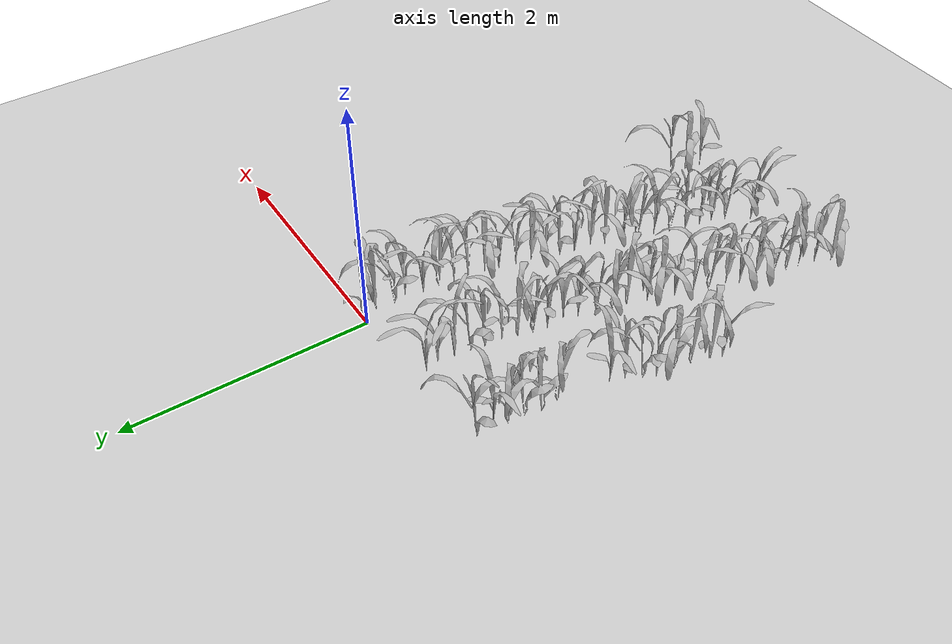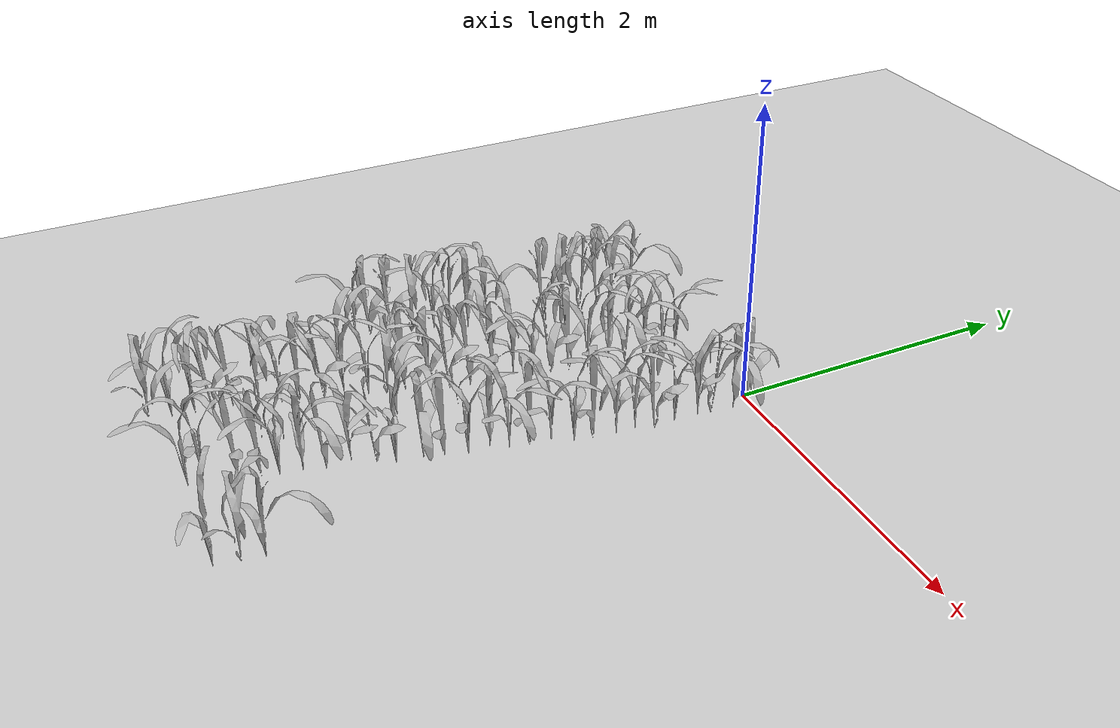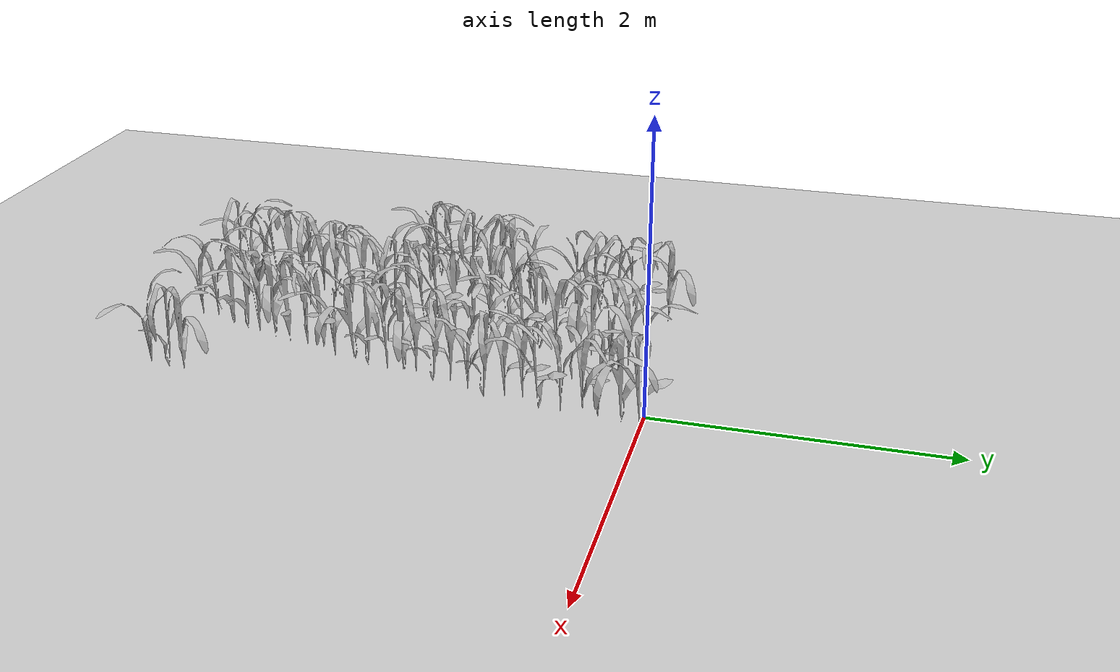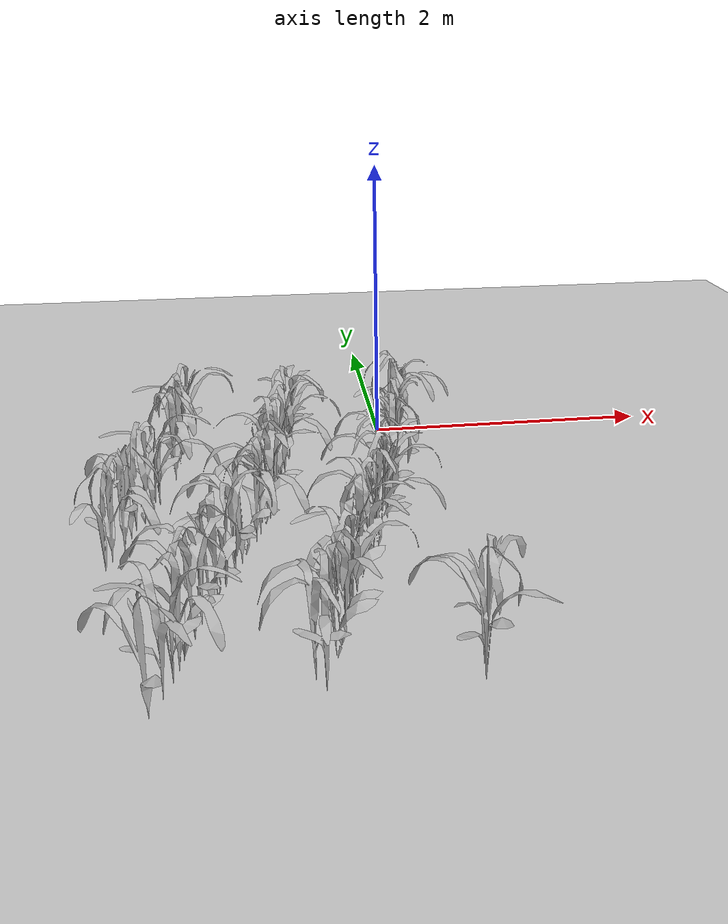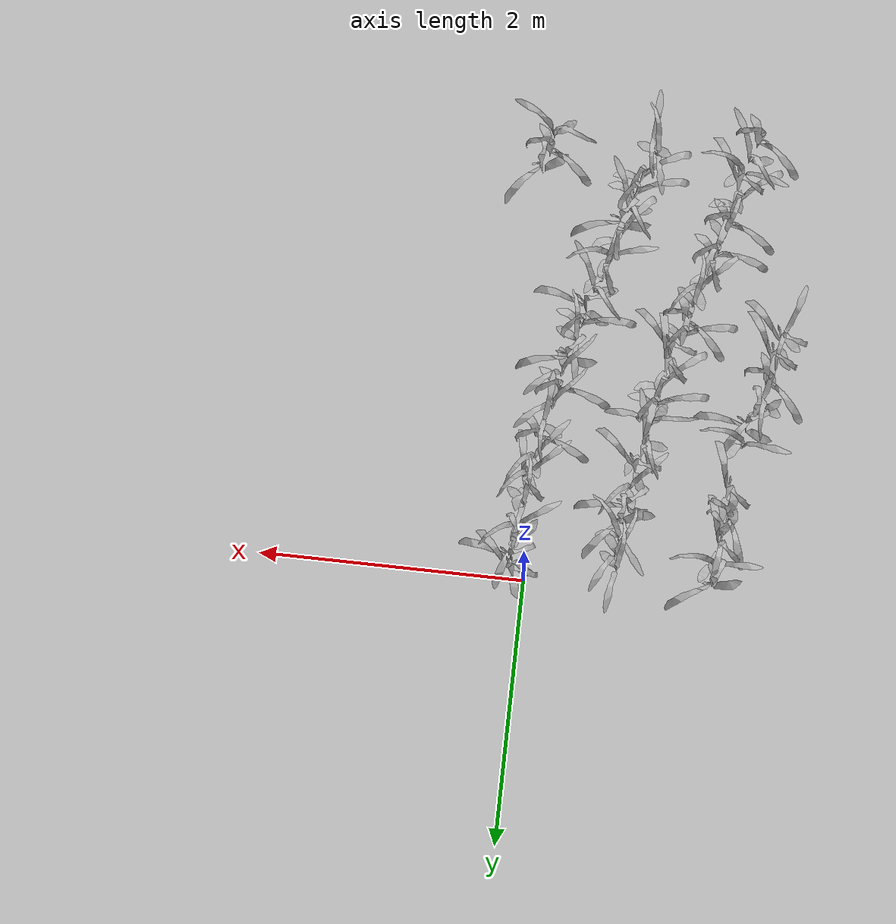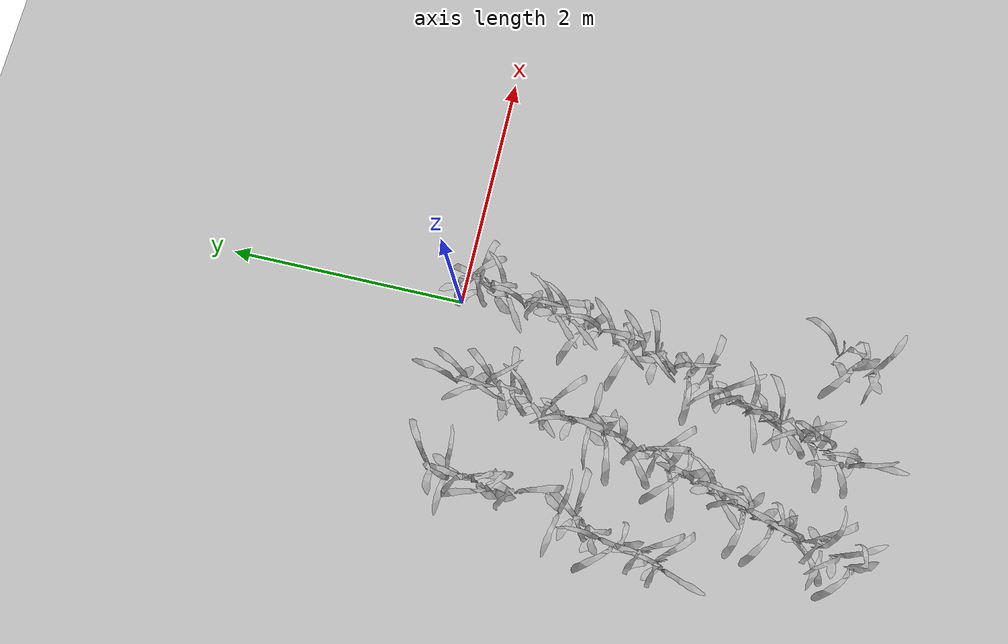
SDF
<sdf version="1.7">
 <world name="default">
  <model name="maize_02_0196">
   <pose>-1.77288 -2.04538 1e-06 -0.000156 3e-06 0.306569</pose>
   <link name="maize_02_link">
    <inertial>
     <pose>0 0 0.01 0 -0 0</pose>
     <mass>0.3</mass>
     <inertia>
      <ixx>0.00334167</ixx>
      <ixy>0</ixy>
      <ixz>0</ixz>
      <iyy>0.00334167</iyy>
      <iyz>0</iyz>
      <izz>1.66667e-05</izz>
     </inertia>
     <pose>0 0 0.1 0 -0 0</pose>
    </inertial>
    <visual name="visual">
     <geometry>
      <mesh><uri>model://maize_02/meshes/maize_02.dae</uri><scale>0.683166 0.683166 0.683166</scale></mesh>
     </geometry>
    </visual>
   </link>
   <static>0</static>
  </model>
  <model name="maize_01_0197">
   <pose>-1.74723 -1.95192 1e-06 2e-06 -0.000116 0.009071</pose>
   <link name="maize_01_link">
    <inertial>
     <pose>0 0 0.01 0 -0 0</pose>
     <mass>0.3</mass>
     <inertia>
      <ixx>0.00334167</ixx>
      <ixy>0</ixy>
      <ixz>0</ixz>
      <iyy>0.00334167</iyy>
      <iyz>0</iyz>
      <izz>1.66667e-05</izz>
     </inertia>
     <pose>0 0 0.1 0 -0 0</pose>
    </inertial>
    <visual name="visual">
     <geometry>
      <mesh><uri>model://maize_01/meshes/maize_01.dae</uri><scale>0.683166 0.683166 0.683166</scale></mesh>
     </geometry>
    </visual>
   </link>
   <static>0</static>
  </model>
  <model name="maize_01_0198">
   <pose>-1.69332 -1.81195 -1e-06 -7.9e-05 6e-06 -0.246721</pose>
   <link name="maize_01_link">
    <inertial>
     <pose>0 0 0.01 0 -0 0</pose>
     <mass>0.3</mass>
     <inertia>
      <ixx>0.00334167</ixx>
      <ixy>0</ixy>
      <ixz>0</ixz>
      <iyy>0.00334167</iyy>
      <iyz>0</iyz>
      <izz>1.66667e-05</izz>
     </inertia>
     <pose>0 0 0.1 0 -0 0</pose>
    </inertial>
    <visual name="visual">
     <geometry>
      <mesh><uri>model://maize_01/meshes/maize_01.dae</uri><scale>0.683166 0.683166 0.683166</scale></mesh>
     </geometry>
    </visual>
   </link>
   <static>0</static>
  </model>
  <model name="maize_01_0199">
   <pose>-1.66122 -1.67341 -0 -5e-06 2.8e-05 3.07493</pose>
   <link name="maize_01_link">
    <inertial>
     <pose>0 0 0.01 0 -0 0</pose>
     <mass>0.3</mass>
     <inertia>
      <ixx>0.00334167</ixx>
      <ixy>0</ixy>
      <ixz>0</ixz>
      <iyy>0.00334167</iyy>
      <iyz>0</iyz>
      <izz>1.66667e-05</izz>
     </inertia>
     <pose>0 0 0.1 0 -0 0</pose>
    </inertial>
    <visual name="visual">
     <geometry>
      <mesh><uri>model://maize_01/meshes/maize_01.dae</uri><scale>0.683166 0.683166 0.683166</scale></mesh>
     </geometry>
    </visual>
   </link>
   <static>0</static>
  </model>
  <model name="maize_02_0200">
   <pose>-1.65213 -1.51637 -0 5e-06 -2.8e-05 0.482195</pose>
   <link name="maize_02_link">
    <inertial>
     <pose>0 0 0.01 0 -0 0</pose>
     <mass>0.3</mass>
     <inertia>
      <ixx>0.00334167</ixx>
      <ixy>0</ixy>
      <ixz>0</ixz>
      <iyy>0.00334167</iyy>
      <iyz>0</iyz>
      <izz>1.66667e-05</izz>
     </inertia>
     <pose>0 0 0.1 0 -0 0</pose>
    </inertial>
    <visual name="visual">
     <geometry>
      <mesh><uri>model://maize_02/meshes/maize_02.dae</uri><scale>0.683166 0.683166 0.683166</scale></mesh>
     </geometry>
    </visual>
   </link>
   <static>0</static>
  </model>
  <model name="maize_01_0201">
   <pose>-1.60629 -1.41965 -0 -2.8e-05 -5e-06 1.76972</pose>
   <link name="maize_01_link">
    <inertial>
     <pose>0 0 0.01 0 -0 0</pose>
     <mass>0.3</mass>
     <inertia>
      <ixx>0.00334167</ixx>
      <ixy>0</ixy>
      <ixz>0</ixz>
      <iyy>0.00334167</iyy>
      <iyz>0</iyz>
      <izz>1.66667e-05</izz>
     </inertia>
     <pose>0 0 0.1 0 -0 0</pose>
    </inertial>
    <visual name="visual">
     <geometry>
      <mesh><uri>model://maize_01/meshes/maize_01.dae</uri><scale>0.683166 0.683166 0.683166</scale></mesh>
     </geometry>
    </visual>
   </link>
   <static>0</static>
  </model>
  <model name="maize_01_0202">
   <pose>-1.55569 -1.3009 1e-06 -0.000156 3e-06 0.728557</pose>
   <link name="maize_01_link">
    <inertial>
     <pose>0 0 0.01 0 -0 0</pose>
     <mass>0.3</mass>
     <inertia>
      <ixx>0.00334167</ixx>
      <ixy>0</ixy>
      <ixz>0</ixz>
      <iyy>0.00334167</iyy>
      <iyz>0</iyz>
      <izz>1.66667e-05</izz>
     </inertia>
     <pose>0 0 0.1 0 -0 0</pose>
    </inertial>
    <visual name="visual">
     <geometry>
      <mesh><uri>model://maize_01/meshes/maize_01.dae</uri><scale>0.683166 0.683166 0.683166</scale></mesh>
     </geometry>
    </visual>
   </link>
   <static>0</static>
  </model>
  <model name="maize_02_0203">
   <pose>-1.53441 -1.16904 -0.000245 -1.2e-05 1.4e-05 -1.12865</pose>
   <link name="maize_02_link">
    <inertial>
     <pose>0 0 0.01 0 -0 0</pose>
     <mass>0.3</mass>
     <inertia>
      <ixx>0.00334167</ixx>
      <ixy>0</ixy>
      <ixz>0</ixz>
      <iyy>0.00334167</iyy>
      <iyz>0</iyz>
      <izz>1.66667e-05</izz>
     </inertia>
     <pose>0 0 0.1 0 -0 0</pose>
    </inertial>
    <visual name="visual">
     <geometry>
      <mesh><uri>model://maize_02/meshes/maize_02.dae</uri><scale>0.683166 0.683166 0.683166</scale></mesh>
     </geometry>
    </visual>
   </link>
   <static>0</static>
  </model>
  <model name="maize_01_0204">
   <pose>-1.4577 -0.768248 -1e-06 -7.9e-05 6e-06 -0.482356</pose>
   <link name="maize_01_link">
    <inertial>
     <pose>0 0 0.01 0 -0 0</pose>
     <mass>0.3</mass>
     <inertia>
      <ixx>0.00334167</ixx>
      <ixy>0</ixy>
      <ixz>0</ixz>
      <iyy>0.00334167</iyy>
      <iyz>0</iyz>
      <izz>1.66667e-05</izz>
     </inertia>
     <pose>0 0 0.1 0 -0 0</pose>
    </inertial>
    <visual name="visual">
     <geometry>
      <mesh><uri>model://maize_01/meshes/maize_01.dae</uri><scale>0.683166 0.683166 0.683166</scale></mesh>
     </geometry>
    </visual>
   </link>
   <static>0</static>
  </model>
  <model name="maize_01_0205">
   <pose>-1.47053 -0.613675 -1e-06 6e-06 -8.6e-05 2.67751</pose>
   <link name="maize_01_link">
    <inertial>
     <pose>0 0 0.01 0 -0 0</pose>
     <mass>0.3</mass>
     <inertia>
      <ixx>0.00334167</ixx>
      <ixy>0</ixy>
      <ixz>0</ixz>
      <iyy>0.00334167</iyy>
      <iyz>0</iyz>
      <izz>1.66667e-05</izz>
     </inertia>
     <pose>0 0 0.1 0 -0 0</pose>
    </inertial>
    <visual name="visual">
     <geometry>
      <mesh><uri>model://maize_01/meshes/maize_01.dae</uri><scale>0.683166 0.683166 0.683166</scale></mesh>
     </geometry>
    </visual>
   </link>
   <static>0</static>
  </model>
  <model name="maize_01_0206">
   <pose>-1.4337 -0.489419 -1e-06 -6e-06 -7.9e-05 2.2981</pose>
   <link name="maize_01_link">
    <inertial>
     <pose>0 0 0.01 0 -0 0</pose>
     <mass>0.3</mass>
     <inertia>
      <ixx>0.00334167</ixx>
      <ixy>0</ixy>
      <ixz>0</ixz>
      <iyy>0.00334167</iyy>
      <iyz>0</iyz>
      <izz>1.66667e-05</izz>
     </inertia>
     <pose>0 0 0.1 0 -0 0</pose>
    </inertial>
    <visual name="visual">
     <geometry>
      <mesh><uri>model://maize_01/meshes/maize_01.dae</uri><scale>0.683166 0.683166 0.683166</scale></mesh>
     </geometry>
    </visual>
   </link>
   <static>0</static>
  </model>
  <model name="maize_01_0207">
   <pose>-1.43557 -0.355632 -0 -2.8e-05 5e-06 -0.509316</pose>
   <link name="maize_01_link">
    <inertial>
     <pose>0 0 0.01 0 -0 0</pose>
     <mass>0.3</mass>
     <inertia>
      <ixx>0.00334167</ixx>
      <ixy>0</ixy>
      <ixz>0</ixz>
      <iyy>0.00334167</iyy>
      <iyz>0</iyz>
      <izz>1.66667e-05</izz>
     </inertia>
     <pose>0 0 0.1 0 -0 0</pose>
    </inertial>
    <visual name="visual">
     <geometry>
      <mesh><uri>model://maize_01/meshes/maize_01.dae</uri><scale>0.683166 0.683166 0.683166</scale></mesh>
     </geometry>
    </visual>
   </link>
   <static>0</static>
  </model>
  <model name="maize_02_0208">
   <pose>-1.40628 -0.243913 -0 5e-06 2.8e-05 -0.983816</pose>
   <link name="maize_02_link">
    <inertial>
     <pose>0 0 0.01 0 -0 0</pose>
     <mass>0.3</mass>
     <inertia>
      <ixx>0.00334167</ixx>
      <ixy>0</ixy>
      <ixz>0</ixz>
      <iyy>0.00334167</iyy>
      <iyz>0</iyz>
      <izz>1.66667e-05</izz>
     </inertia>
     <pose>0 0 0.1 0 -0 0</pose>
    </inertial>
    <visual name="visual">
     <geometry>
      <mesh><uri>model://maize_02/meshes/maize_02.dae</uri><scale>0.683166 0.683166 0.683166</scale></mesh>
     </geometry>
    </visual>
   </link>
   <static>0</static>
  </model>
  <model name="maize_01_0209">
   <pose>-1.41762 -0.101498 -1e-06 -8.3e-05 6e-06 1.36774</pose>
   <link name="maize_01_link">
    <inertial>
     <pose>0 0 0.01 0 -0 0</pose>
     <mass>0.3</mass>
     <inertia>
      <ixx>0.00334167</ixx>
      <ixy>0</ixy>
      <ixz>0</ixz>
      <iyy>0.00334167</iyy>
      <iyz>0</iyz>
      <izz>1.66667e-05</izz>
     </inertia>
     <pose>0 0 0.1 0 -0 0</pose>
    </inertial>
    <visual name="visual">
     <geometry>
      <mesh><uri>model://maize_01/meshes/maize_01.dae</uri><scale>0.683166 0.683166 0.683166</scale></mesh>
     </geometry>
    </visual>
   </link>
   <static>0</static>
  </model>
  <model name="maize_01_0260">
   <pose>-1.42355 -3.49175 -1e-06 8.9e-05 6e-06 -3.10302</pose>
   <link name="maize_01_link">
    <inertial>
     <pose>0 0 0.01 0 -0 0</pose>
     <mass>0.3</mass>
     <inertia>
      <ixx>0.00334167</ixx>
      <ixy>0</ixy>
      <ixz>0</ixz>
      <iyy>0.00334167</iyy>
      <iyz>0</iyz>
      <izz>1.66667e-05</izz>
     </inertia>
     <pose>0 0 0.1 0 -0 0</pose>
    </inertial>
    <visual name="visual">
     <geometry>
      <mesh><uri>model://maize_01/meshes/maize_01.dae</uri><scale>0.683166 0.683166 0.683166</scale></mesh>
     </geometry>
    </visual>
   </link>
   <static>0</static>
  </model>
  <model name="maize_02_0261">
   <pose>-1.37185 -3.35989 -0 -5e-06 -2.8e-05 1.09314</pose>
   <link name="maize_02_link">
    <inertial>
     <pose>0 0 0.01 0 -0 0</pose>
     <mass>0.3</mass>
     <inertia>
      <ixx>0.00334167</ixx>
      <ixy>0</ixy>
      <ixz>0</ixz>
      <iyy>0.00334167</iyy>
      <iyz>0</iyz>
      <izz>1.66667e-05</izz>
     </inertia>
     <pose>0 0 0.1 0 -0 0</pose>
    </inertial>
    <visual name="visual">
     <geometry>
      <mesh><uri>model://maize_02/meshes/maize_02.dae</uri><scale>0.683166 0.683166 0.683166</scale></mesh>
     </geometry>
    </visual>
   </link>
   <static>0</static>
  </model>
  <model name="maize_02_0262">
   <pose>-1.33409 -3.22039 -0.000245 1.4e-05 -1.2e-05 -1.25133</pose>
   <link name="maize_02_link">
    <inertial>
     <pose>0 0 0.01 0 -0 0</pose>
     <mass>0.3</mass>
     <inertia>
      <ixx>0.00334167</ixx>
      <ixy>0</ixy>
      <ixz>0</ixz>
      <iyy>0.00334167</iyy>
      <iyz>0</iyz>
      <izz>1.66667e-05</izz>
     </inertia>
     <pose>0 0 0.1 0 -0 0</pose>
    </inertial>
    <visual name="visual">
     <geometry>
      <mesh><uri>model://maize_02/meshes/maize_02.dae</uri><scale>0.683166 0.683166 0.683166</scale></mesh>
     </geometry>
    </visual>
   </link>
   <static>0</static>
  </model>
  <model name="maize_01_0263">
   <pose>-1.31337 -3.11597 -1e-06 8.6e-05 -6e-06 -0.225166</pose>
   <link name="maize_01_link">
    <inertial>
     <pose>0 0 0.01 0 -0 0</pose>
     <mass>0.3</mass>
     <inertia>
      <ixx>0.00334167</ixx>
      <ixy>0</ixy>
      <ixz>0</ixz>
      <iyy>0.00334167</iyy>
      <iyz>0</iyz>
      <izz>1.66667e-05</izz>
     </inertia>
     <pose>0 0 0.1 0 -0 0</pose>
    </inertial>
    <visual name="visual">
     <geometry>
      <mesh><uri>model://maize_01/meshes/maize_01.dae</uri><scale>0.683166 0.683166 0.683166</scale></mesh>
     </geometry>
    </visual>
   </link>
   <static>0</static>
  </model>
  <model name="maize_01_0264">
   <pose>-1.29684 -2.98966 1e-06 3e-06 -0.00013 -1.70076</pose>
   <link name="maize_01_link">
    <inertial>
     <pose>0 0 0.01 0 -0 0</pose>
     <mass>0.3</mass>
     <inertia>
      <ixx>0.00334167</ixx>
      <ixy>0</ixy>
      <ixz>0</ixz>
      <iyy>0.00334167</iyy>
      <iyz>0</iyz>
      <izz>1.66667e-05</izz>
     </inertia>
     <pose>0 0 0.1 0 -0 0</pose>
    </inertial>
    <visual name="visual">
     <geometry>
      <mesh><uri>model://maize_01/meshes/maize_01.dae</uri><scale>0.683166 0.683166 0.683166</scale></mesh>
     </geometry>
    </visual>
   </link>
   <static>0</static>
  </model>
  <model name="maize_01_0265">
   <pose>-1.24952 -2.8344 -1e-06 -6e-06 -8.9e-05 -2.90078</pose>
   <link name="maize_01_link">
    <inertial>
     <pose>0 0 0.01 0 -0 0</pose>
     <mass>0.3</mass>
     <inertia>
      <ixx>0.00334167</ixx>
      <ixy>0</ixy>
      <ixz>0</ixz>
      <iyy>0.00334167</iyy>
      <iyz>0</iyz>
      <izz>1.66667e-05</izz>
     </inertia>
     <pose>0 0 0.1 0 -0 0</pose>
    </inertial>
    <visual name="visual">
     <geometry>
      <mesh><uri>model://maize_01/meshes/maize_01.dae</uri><scale>0.683166 0.683166 0.683166</scale></mesh>
     </geometry>
    </visual>
   </link>
   <static>0</static>
  </model>
  <model name="maize_02_0266">
   <pose>-1.21906 -2.69869 -1e-06 8.6e-05 -6e-06 -2.9002</pose>
   <link name="maize_02_link">
    <inertial>
     <pose>0 0 0.01 0 -0 0</pose>
     <mass>0.3</mass>
     <inertia>
      <ixx>0.00334167</ixx>
      <ixy>0</ixy>
      <ixz>0</ixz>
      <iyy>0.00334167</iyy>
      <iyz>0</iyz>
      <izz>1.66667e-05</izz>
     </inertia>
     <pose>0 0 0.1 0 -0 0</pose>
    </inertial>
    <visual name="visual">
     <geometry>
      <mesh><uri>model://maize_02/meshes/maize_02.dae</uri><scale>0.683166 0.683166 0.683166</scale></mesh>
     </geometry>
    </visual>
   </link>
   <static>0</static>
  </model>
  <model name="maize_01_0267">
   <pose>-1.17482 -2.58777 -0 5e-06 2.8e-05 -2.60675</pose>
   <link name="maize_01_link">
    <inertial>
     <pose>0 0 0.01 0 -0 0</pose>
     <mass>0.3</mass>
     <inertia>
      <ixx>0.00334167</ixx>
      <ixy>0</ixy>
      <ixz>0</ixz>
      <iyy>0.00334167</iyy>
      <iyz>0</iyz>
      <izz>1.66667e-05</izz>
     </inertia>
     <pose>0 0 0.1 0 -0 0</pose>
    </inertial>
    <visual name="visual">
     <geometry>
      <mesh><uri>model://maize_01/meshes/maize_01.dae</uri><scale>0.683166 0.683166 0.683166</scale></mesh>
     </geometry>
    </visual>
   </link>
   <static>0</static>
  </model>
  <model name="maize_01_0268">
   <pose>-1.14631 -2.44412 -0 5e-06 2.8e-05 -1.03449</pose>
   <link name="maize_01_link">
    <inertial>
     <pose>0 0 0.01 0 -0 0</pose>
     <mass>0.3</mass>
     <inertia>
      <ixx>0.00334167</ixx>
      <ixy>0</ixy>
      <ixz>0</ixz>
      <iyy>0.00334167</iyy>
      <iyz>0</iyz>
      <izz>1.66667e-05</izz>
     </inertia>
     <pose>0 0 0.1 0 -0 0</pose>
    </inertial>
    <visual name="visual">
     <geometry>
      <mesh><uri>model://maize_01/meshes/maize_01.dae</uri><scale>0.683166 0.683166 0.683166</scale></mesh>
     </geometry>
    </visual>
   </link>
   <static>0</static>
  </model>
  <model name="maize_02_0269">
   <pose>-1.10263 -2.31988 -0.000245 -1.4e-05 1.2e-05 -0.212283</pose>
   <link name="maize_02_link">
    <inertial>
     <pose>0 0 0.01 0 -0 0</pose>
     <mass>0.3</mass>
     <inertia>
      <ixx>0.00334167</ixx>
      <ixy>0</ixy>
      <ixz>0</ixz>
      <iyy>0.00334167</iyy>
      <iyz>0</iyz>
      <izz>1.66667e-05</izz>
     </inertia>
     <pose>0 0 0.1 0 -0 0</pose>
    </inertial>
    <visual name="visual">
     <geometry>
      <mesh><uri>model://maize_02/meshes/maize_02.dae</uri><scale>0.683166 0.683166 0.683166</scale></mesh>
     </geometry>
    </visual>
   </link>
   <static>0</static>
  </model>
  <model name="maize_02_0270">
   <pose>-1.05323 -2.17308 -1e-06 6e-06 7.9e-05 -2.71286</pose>
   <link name="maize_02_link">
    <inertial>
     <pose>0 0 0.01 0 -0 0</pose>
     <mass>0.3</mass>
     <inertia>
      <ixx>0.00334167</ixx>
      <ixy>0</ixy>
      <ixz>0</ixz>
      <iyy>0.00334167</iyy>
      <iyz>0</iyz>
      <izz>1.66667e-05</izz>
     </inertia>
     <pose>0 0 0.1 0 -0 0</pose>
    </inertial>
    <visual name="visual">
     <geometry>
      <mesh><uri>model://maize_02/meshes/maize_02.dae</uri><scale>0.683166 0.683166 0.683166</scale></mesh>
     </geometry>
    </visual>
   </link>
   <static>0</static>
  </model>
  <model name="maize_01_0271">
   <pose>-1.01258 -2.06003 -0 5e-06 -2.8e-05 -3.13397</pose>
   <link name="maize_01_link">
    <inertial>
     <pose>0 0 0.01 0 -0 0</pose>
     <mass>0.3</mass>
     <inertia>
      <ixx>0.00334167</ixx>
      <ixy>0</ixy>
      <ixz>0</ixz>
      <iyy>0.00334167</iyy>
      <iyz>0</iyz>
      <izz>1.66667e-05</izz>
     </inertia>
     <pose>0 0 0.1 0 -0 0</pose>
    </inertial>
    <visual name="visual">
     <geometry>
      <mesh><uri>model://maize_01/meshes/maize_01.dae</uri><scale>0.683166 0.683166 0.683166</scale></mesh>
     </geometry>
    </visual>
   </link>
   <static>0</static>
  </model>
  <model name="maize_01_0272">
   <pose>-0.994138 -1.94309 1e-06 -0.000156 3e-06 -2.17775</pose>
   <link name="maize_01_link">
    <inertial>
     <pose>0 0 0.01 0 -0 0</pose>
     <mass>0.3</mass>
     <inertia>
      <ixx>0.00334167</ixx>
      <ixy>0</ixy>
      <ixz>0</ixz>
      <iyy>0.00334167</iyy>
      <iyz>0</iyz>
      <izz>1.66667e-05</izz>
     </inertia>
     <pose>0 0 0.1 0 -0 0</pose>
    </inertial>
    <visual name="visual">
     <geometry>
      <mesh><uri>model://maize_01/meshes/maize_01.dae</uri><scale>0.683166 0.683166 0.683166</scale></mesh>
     </geometry>
    </visual>
   </link>
   <static>0</static>
  </model>
  <model name="maize_01_0273">
   <pose>-0.930453 -1.79781 -0 5e-06 -2.8e-05 -0.006102</pose>
   <link name="maize_01_link">
    <inertial>
     <pose>0 0 0.01 0 -0 0</pose>
     <mass>0.3</mass>
     <inertia>
      <ixx>0.00334167</ixx>
      <ixy>0</ixy>
      <ixz>0</ixz>
      <iyy>0.00334167</iyy>
      <iyz>0</iyz>
      <izz>1.66667e-05</izz>
     </inertia>
     <pose>0 0 0.1 0 -0 0</pose>
    </inertial>
    <visual name="visual">
     <geometry>
      <mesh><uri>model://maize_01/meshes/maize_01.dae</uri><scale>0.683166 0.683166 0.683166</scale></mesh>
     </geometry>
    </visual>
   </link>
   <static>0</static>
  </model>
  <model name="maize_01_0274">
   <pose>-0.905879 -1.67646 -0.000245 -1.2e-05 1.4e-05 -0.593243</pose>
   <link name="maize_01_link">
    <inertial>
     <pose>0 0 0.01 0 -0 0</pose>
     <mass>0.3</mass>
     <inertia>
      <ixx>0.00334167</ixx>
      <ixy>0</ixy>
      <ixz>0</ixz>
      <iyy>0.00334167</iyy>
      <iyz>0</iyz>
      <izz>1.66667e-05</izz>
     </inertia>
     <pose>0 0 0.1 0 -0 0</pose>
    </inertial>
    <visual name="visual">
     <geometry>
      <mesh><uri>model://maize_01/meshes/maize_01.dae</uri><scale>0.683166 0.683166 0.683166</scale></mesh>
     </geometry>
    </visual>
   </link>
   <static>0</static>
  </model>
  <model name="maize_01_0275">
   <pose>-0.872901 -1.54295 -0 -5e-06 2.8e-05 -1.66984</pose>
   <link name="maize_01_link">
    <inertial>
     <pose>0 0 0.01 0 -0 0</pose>
     <mass>0.3</mass>
     <inertia>
      <ixx>0.00334167</ixx>
      <ixy>0</ixy>
      <ixz>0</ixz>
      <iyy>0.00334167</iyy>
      <iyz>0</iyz>
      <izz>1.66667e-05</izz>
     </inertia>
     <pose>0 0 0.1 0 -0 0</pose>
    </inertial>
    <visual name="visual">
     <geometry>
      <mesh><uri>model://maize_01/meshes/maize_01.dae</uri><scale>0.683166 0.683166 0.683166</scale></mesh>
     </geometry>
    </visual>
   </link>
   <static>0</static>
  </model>
  <model name="maize_01_0276">
   <pose>-0.833614 -1.39389 -1e-06 -8.6e-05 6e-06 -2.1599</pose>
   <link name="maize_01_link">
    <inertial>
     <pose>0 0 0.01 0 -0 0</pose>
     <mass>0.3</mass>
     <inertia>
      <ixx>0.00334167</ixx>
      <ixy>0</ixy>
      <ixz>0</ixz>
      <iyy>0.00334167</iyy>
      <iyz>0</iyz>
      <izz>1.66667e-05</izz>
     </inertia>
     <pose>0 0 0.1 0 -0 0</pose>
    </inertial>
    <visual name="visual">
     <geometry>
      <mesh><uri>model://maize_01/meshes/maize_01.dae</uri><scale>0.683166 0.683166 0.683166</scale></mesh>
     </geometry>
    </visual>
   </link>
   <static>0</static>
  </model>
  <model name="maize_02_0277">
   <pose>-0.82517 -1.26151 -0 -5e-06 2.8e-05 2.1402</pose>
   <link name="maize_02_link">
    <inertial>
     <pose>0 0 0.01 0 -0 0</pose>
     <mass>0.3</mass>
     <inertia>
      <ixx>0.00334167</ixx>
      <ixy>0</ixy>
      <ixz>0</ixz>
      <iyy>0.00334167</iyy>
      <iyz>0</iyz>
      <izz>1.66667e-05</izz>
     </inertia>
     <pose>0 0 0.1 0 -0 0</pose>
    </inertial>
    <visual name="visual">
     <geometry>
      <mesh><uri>model://maize_02/meshes/maize_02.dae</uri><scale>0.683166 0.683166 0.683166</scale></mesh>
     </geometry>
    </visual>
   </link>
   <static>0</static>
  </model>
  <model name="maize_02_0278">
   <pose>-0.802042 -1.1304 -0 5e-06 -2.8e-05 0.845214</pose>
   <link name="maize_02_link">
    <inertial>
     <pose>0 0 0.01 0 -0 0</pose>
     <mass>0.3</mass>
     <inertia>
      <ixx>0.00334167</ixx>
      <ixy>0</ixy>
      <ixz>0</ixz>
      <iyy>0.00334167</iyy>
      <iyz>0</iyz>
      <izz>1.66667e-05</izz>
     </inertia>
     <pose>0 0 0.1 0 -0 0</pose>
    </inertial>
    <visual name="visual">
     <geometry>
      <mesh><uri>model://maize_02/meshes/maize_02.dae</uri><scale>0.683166 0.683166 0.683166</scale></mesh>
     </geometry>
    </visual>
   </link>
   <static>0</static>
  </model>
  <model name="maize_01_0279">
   <pose>-0.783416 -1.01189 1e-06 0.000156 3e-06 -0.901197</pose>
   <link name="maize_01_link">
    <inertial>
     <pose>0 0 0.01 0 -0 0</pose>
     <mass>0.3</mass>
     <inertia>
      <ixx>0.00334167</ixx>
      <ixy>0</ixy>
      <ixz>0</ixz>
      <iyy>0.00334167</iyy>
      <iyz>0</iyz>
      <izz>1.66667e-05</izz>
     </inertia>
     <pose>0 0 0.1 0 -0 0</pose>
    </inertial>
    <visual name="visual">
     <geometry>
      <mesh><uri>model://maize_01/meshes/maize_01.dae</uri><scale>0.683166 0.683166 0.683166</scale></mesh>
     </geometry>
    </visual>
   </link>
   <static>0</static>
  </model>
  <model name="maize_01_0280">
   <pose>-0.755146 -0.892494 -0 -2.8e-05 5e-06 0.086274</pose>
   <link name="maize_01_link">
    <inertial>
     <pose>0 0 0.01 0 -0 0</pose>
     <mass>0.3</mass>
     <inertia>
      <ixx>0.00334167</ixx>
      <ixy>0</ixy>
      <ixz>0</ixz>
      <iyy>0.00334167</iyy>
      <iyz>0</iyz>
      <izz>1.66667e-05</izz>
     </inertia>
     <pose>0 0 0.1 0 -0 0</pose>
    </inertial>
    <visual name="visual">
     <geometry>
      <mesh><uri>model://maize_01/meshes/maize_01.dae</uri><scale>0.683166 0.683166 0.683166</scale></mesh>
     </geometry>
    </visual>
   </link>
   <static>0</static>
  </model>
  <model name="maize_02_0281">
   <pose>-0.727001 -0.762756 -0 2.8e-05 5e-06 -0.168254</pose>
   <link name="maize_02_link">
    <inertial>
     <pose>0 0 0.01 0 -0 0</pose>
     <mass>0.3</mass>
     <inertia>
      <ixx>0.00334167</ixx>
      <ixy>0</ixy>
      <ixz>0</ixz>
      <iyy>0.00334167</iyy>
      <iyz>0</iyz>
      <izz>1.66667e-05</izz>
     </inertia>
     <pose>0 0 0.1 0 -0 0</pose>
    </inertial>
    <visual name="visual">
     <geometry>
      <mesh><uri>model://maize_02/meshes/maize_02.dae</uri><scale>0.683166 0.683166 0.683166</scale></mesh>
     </geometry>
    </visual>
   </link>
   <static>0</static>
  </model>
  <model name="maize_01_0282">
   <pose>-0.733512 -0.609577 -0 -5e-06 2.8e-05 0.913001</pose>
   <link name="maize_01_link">
    <inertial>
     <pose>0 0 0.01 0 -0 0</pose>
     <mass>0.3</mass>
     <inertia>
      <ixx>0.00334167</ixx>
      <ixy>0</ixy>
      <ixz>0</ixz>
      <iyy>0.00334167</iyy>
      <iyz>0</iyz>
      <izz>1.66667e-05</izz>
     </inertia>
     <pose>0 0 0.1 0 -0 0</pose>
    </inertial>
    <visual name="visual">
     <geometry>
      <mesh><uri>model://maize_01/meshes/maize_01.dae</uri><scale>0.683166 0.683166 0.683166</scale></mesh>
     </geometry>
    </visual>
   </link>
   <static>0</static>
  </model>
  <model name="maize_01_0283">
   <pose>-0.684173 -0.507618 -0.000245 -1.2e-05 1.4e-05 1.66532</pose>
   <link name="maize_01_link">
    <inertial>
     <pose>0 0 0.01 0 -0 0</pose>
     <mass>0.3</mass>
     <inertia>
      <ixx>0.00334167</ixx>
      <ixy>0</ixy>
      <ixz>0</ixz>
      <iyy>0.00334167</iyy>
      <iyz>0</iyz>
      <izz>1.66667e-05</izz>
     </inertia>
     <pose>0 0 0.1 0 -0 0</pose>
    </inertial>
    <visual name="visual">
     <geometry>
      <mesh><uri>model://maize_01/meshes/maize_01.dae</uri><scale>0.683166 0.683166 0.683166</scale></mesh>
     </geometry>
    </visual>
   </link>
   <static>0</static>
  </model>
  <model name="maize_02_0284">
   <pose>-0.677657 -0.370369 -0 -2.8e-05 5e-06 -1.91496</pose>
   <link name="maize_02_link">
    <inertial>
     <pose>0 0 0.01 0 -0 0</pose>
     <mass>0.3</mass>
     <inertia>
      <ixx>0.00334167</ixx>
      <ixy>0</ixy>
      <ixz>0</ixz>
      <iyy>0.00334167</iyy>
      <iyz>0</iyz>
      <izz>1.66667e-05</izz>
     </inertia>
     <pose>0 0 0.1 0 -0 0</pose>
    </inertial>
    <visual name="visual">
     <geometry>
      <mesh><uri>model://maize_02/meshes/maize_02.dae</uri><scale>0.683166 0.683166 0.683166</scale></mesh>
     </geometry>
    </visual>
   </link>
   <static>0</static>
  </model>
  <model name="maize_02_0285">
   <pose>-0.658655 -0.237879 -0 2.8e-05 -5e-06 -3.01122</pose>
   <link name="maize_02_link">
    <inertial>
     <pose>0 0 0.01 0 -0 0</pose>
     <mass>0.3</mass>
     <inertia>
      <ixx>0.00334167</ixx>
      <ixy>0</ixy>
      <ixz>0</ixz>
      <iyy>0.00334167</iyy>
      <iyz>0</iyz>
      <izz>1.66667e-05</izz>
     </inertia>
     <pose>0 0 0.1 0 -0 0</pose>
    </inertial>
    <visual name="visual">
     <geometry>
      <mesh><uri>model://maize_02/meshes/maize_02.dae</uri><scale>0.683166 0.683166 0.683166</scale></mesh>
     </geometry>
    </visual>
   </link>
   <static>0</static>
  </model>
  <model name="maize_02_0286">
   <pose>-0.679031 -0.127317 -0 -2.8e-05 -5e-06 -2.67942</pose>
   <link name="maize_02_link">
    <inertial>
     <pose>0 0 0.01 0 -0 0</pose>
     <mass>0.3</mass>
     <inertia>
      <ixx>0.00334167</ixx>
      <ixy>0</ixy>
      <ixz>0</ixz>
      <iyy>0.00334167</iyy>
      <iyz>0</iyz>
      <izz>1.66667e-05</izz>
     </inertia>
     <pose>0 0 0.1 0 -0 0</pose>
    </inertial>
    <visual name="visual">
     <geometry>
      <mesh><uri>model://maize_02/meshes/maize_02.dae</uri><scale>0.683166 0.683166 0.683166</scale></mesh>
     </geometry>
    </visual>
   </link>
   <static>0</static>
  </model>
  <model name="maize_02_0335">
   <pose>-0.628911 -3.39896 -0 5e-06 -2.8e-05 0.578584</pose>
   <link name="maize_02_link">
    <inertial>
     <pose>0 0 0.01 0 -0 0</pose>
     <mass>0.3</mass>
     <inertia>
      <ixx>0.00334167</ixx>
      <ixy>0</ixy>
      <ixz>0</ixz>
      <iyy>0.00334167</iyy>
      <iyz>0</iyz>
      <izz>1.66667e-05</izz>
     </inertia>
     <pose>0 0 0.1 0 -0 0</pose>
    </inertial>
    <visual name="visual">
     <geometry>
      <mesh><uri>model://maize_02/meshes/maize_02.dae</uri><scale>0.683166 0.683166 0.683166</scale></mesh>
     </geometry>
    </visual>
   </link>
   <static>0</static>
  </model>
  <model name="maize_02_0336">
   <pose>-0.671571 -3.30107 -0 2.8e-05 5e-06 -2.34635</pose>
   <link name="maize_02_link">
    <inertial>
     <pose>0 0 0.01 0 -0 0</pose>
     <mass>0.3</mass>
     <inertia>
      <ixx>0.00334167</ixx>
      <ixy>0</ixy>
      <ixz>0</ixz>
      <iyy>0.00334167</iyy>
      <iyz>0</iyz>
      <izz>1.66667e-05</izz>
     </inertia>
     <pose>0 0 0.1 0 -0 0</pose>
    </inertial>
    <visual name="visual">
     <geometry>
      <mesh><uri>model://maize_02/meshes/maize_02.dae</uri><scale>0.683166 0.683166 0.683166</scale></mesh>
     </geometry>
    </visual>
   </link>
   <static>0</static>
  </model>
  <model name="maize_01_0337">
   <pose>-0.559282 -3.11511 -1e-06 6e-06 -8.6e-05 -1.85949</pose>
   <link name="maize_01_link">
    <inertial>
     <pose>0 0 0.01 0 -0 0</pose>
     <mass>0.3</mass>
     <inertia>
      <ixx>0.00334167</ixx>
      <ixy>0</ixy>
      <ixz>0</ixz>
      <iyy>0.00334167</iyy>
      <iyz>0</iyz>
      <izz>1.66667e-05</izz>
     </inertia>
     <pose>0 0 0.1 0 -0 0</pose>
    </inertial>
    <visual name="visual">
     <geometry>
      <mesh><uri>model://maize_01/meshes/maize_01.dae</uri><scale>0.683166 0.683166 0.683166</scale></mesh>
     </geometry>
    </visual>
   </link>
   <static>0</static>
  </model>
  <model name="maize_01_0338">
   <pose>-0.525188 -2.98905 -0 5e-06 2.8e-05 -2.11541</pose>
   <link name="maize_01_link">
    <inertial>
     <pose>0 0 0.01 0 -0 0</pose>
     <mass>0.3</mass>
     <inertia>
      <ixx>0.00334167</ixx>
      <ixy>0</ixy>
      <ixz>0</ixz>
      <iyy>0.00334167</iyy>
      <iyz>0</iyz>
      <izz>1.66667e-05</izz>
     </inertia>
     <pose>0 0 0.1 0 -0 0</pose>
    </inertial>
    <visual name="visual">
     <geometry>
      <mesh><uri>model://maize_01/meshes/maize_01.dae</uri><scale>0.683166 0.683166 0.683166</scale></mesh>
     </geometry>
    </visual>
   </link>
   <static>0</static>
  </model>
  <model name="maize_02_0339">
   <pose>-0.497466 -2.88997 1e-06 0.000156 -3e-06 1.05558</pose>
   <link name="maize_02_link">
    <inertial>
     <pose>0 0 0.01 0 -0 0</pose>
     <mass>0.3</mass>
     <inertia>
      <ixx>0.00334167</ixx>
      <ixy>0</ixy>
      <ixz>0</ixz>
      <iyy>0.00334167</iyy>
      <iyz>0</iyz>
      <izz>1.66667e-05</izz>
     </inertia>
     <pose>0 0 0.1 0 -0 0</pose>
    </inertial>
    <visual name="visual">
     <geometry>
      <mesh><uri>model://maize_02/meshes/maize_02.dae</uri><scale>0.683166 0.683166 0.683166</scale></mesh>
     </geometry>
    </visual>
   </link>
   <static>0</static>
  </model>
  <model name="maize_01_0340">
   <pose>-0.468156 -2.75861 -1e-06 -6e-06 8.9e-05 1.16128</pose>
   <link name="maize_01_link">
    <inertial>
     <pose>0 0 0.01 0 -0 0</pose>
     <mass>0.3</mass>
     <inertia>
      <ixx>0.00334167</ixx>
      <ixy>0</ixy>
      <ixz>0</ixz>
      <iyy>0.00334167</iyy>
      <iyz>0</iyz>
      <izz>1.66667e-05</izz>
     </inertia>
     <pose>0 0 0.1 0 -0 0</pose>
    </inertial>
    <visual name="visual">
     <geometry>
      <mesh><uri>model://maize_01/meshes/maize_01.dae</uri><scale>0.683166 0.683166 0.683166</scale></mesh>
     </geometry>
    </visual>
   </link>
   <static>0</static>
  </model>
  <model name="maize_01_0341">
   <pose>-0.43272 -2.62617 -0 2.8e-05 -5e-06 -1.45459</pose>
   <link name="maize_01_link">
    <inertial>
     <pose>0 0 0.01 0 -0 0</pose>
     <mass>0.3</mass>
     <inertia>
      <ixx>0.00334167</ixx>
      <ixy>0</ixy>
      <ixz>0</ixz>
      <iyy>0.00334167</iyy>
      <iyz>0</iyz>
      <izz>1.66667e-05</izz>
     </inertia>
     <pose>0 0 0.1 0 -0 0</pose>
    </inertial>
    <visual name="visual">
     <geometry>
      <mesh><uri>model://maize_01/meshes/maize_01.dae</uri><scale>0.683166 0.683166 0.683166</scale></mesh>
     </geometry>
    </visual>
   </link>
   <static>0</static>
  </model>
  <model name="maize_02_0342">
   <pose>-0.399285 -2.47903 1e-06 -3e-06 0.000156 -0.76464</pose>
   <link name="maize_02_link">
    <inertial>
     <pose>0 0 0.01 0 -0 0</pose>
     <mass>0.3</mass>
     <inertia>
      <ixx>0.00334167</ixx>
      <ixy>0</ixy>
      <ixz>0</ixz>
      <iyy>0.00334167</iyy>
      <iyz>0</iyz>
      <izz>1.66667e-05</izz>
     </inertia>
     <pose>0 0 0.1 0 -0 0</pose>
    </inertial>
    <visual name="visual">
     <geometry>
      <mesh><uri>model://maize_02/meshes/maize_02.dae</uri><scale>0.683166 0.683166 0.683166</scale></mesh>
     </geometry>
    </visual>
   </link>
   <static>0</static>
  </model>
  <model name="maize_01_0343">
   <pose>-0.359969 -2.33942 -0 2.8e-05 5e-06 -1.04649</pose>
   <link name="maize_01_link">
    <inertial>
     <pose>0 0 0.01 0 -0 0</pose>
     <mass>0.3</mass>
     <inertia>
      <ixx>0.00334167</ixx>
      <ixy>0</ixy>
      <ixz>0</ixz>
      <iyy>0.00334167</iyy>
      <iyz>0</iyz>
      <izz>1.66667e-05</izz>
     </inertia>
     <pose>0 0 0.1 0 -0 0</pose>
    </inertial>
    <visual name="visual">
     <geometry>
      <mesh><uri>model://maize_01/meshes/maize_01.dae</uri><scale>0.683166 0.683166 0.683166</scale></mesh>
     </geometry>
    </visual>
   </link>
   <static>0</static>
  </model>
  <model name="maize_02_0344">
   <pose>-0.30534 -2.2353 -1e-06 -6e-06 -7.9e-05 1.16185</pose>
   <link name="maize_02_link">
    <inertial>
     <pose>0 0 0.01 0 -0 0</pose>
     <mass>0.3</mass>
     <inertia>
      <ixx>0.00334167</ixx>
      <ixy>0</ixy>
      <ixz>0</ixz>
      <iyy>0.00334167</iyy>
      <iyz>0</iyz>
      <izz>1.66667e-05</izz>
     </inertia>
     <pose>0 0 0.1 0 -0 0</pose>
    </inertial>
    <visual name="visual">
     <geometry>
      <mesh><uri>model://maize_02/meshes/maize_02.dae</uri><scale>0.683166 0.683166 0.683166</scale></mesh>
     </geometry>
    </visual>
   </link>
   <static>0</static>
  </model>
  <model name="maize_01_0345">
   <pose>-0.266287 -2.0772 -0 5e-06 -2.8e-05 0.594766</pose>
   <link name="maize_01_link">
    <inertial>
     <pose>0 0 0.01 0 -0 0</pose>
     <mass>0.3</mass>
     <inertia>
      <ixx>0.00334167</ixx>
      <ixy>0</ixy>
      <ixz>0</ixz>
      <iyy>0.00334167</iyy>
      <iyz>0</iyz>
      <izz>1.66667e-05</izz>
     </inertia>
     <pose>0 0 0.1 0 -0 0</pose>
    </inertial>
    <visual name="visual">
     <geometry>
      <mesh><uri>model://maize_01/meshes/maize_01.dae</uri><scale>0.683166 0.683166 0.683166</scale></mesh>
     </geometry>
    </visual>
   </link>
   <static>0</static>
  </model>
  <model name="maize_01_0346">
   <pose>-0.224964 -1.95359 -0 2.8e-05 -5e-06 -2.32601</pose>
   <link name="maize_01_link">
    <inertial>
     <pose>0 0 0.01 0 -0 0</pose>
     <mass>0.3</mass>
     <inertia>
      <ixx>0.00334167</ixx>
      <ixy>0</ixy>
      <ixz>0</ixz>
      <iyy>0.00334167</iyy>
      <iyz>0</iyz>
      <izz>1.66667e-05</izz>
     </inertia>
     <pose>0 0 0.1 0 -0 0</pose>
    </inertial>
    <visual name="visual">
     <geometry>
      <mesh><uri>model://maize_01/meshes/maize_01.dae</uri><scale>0.683166 0.683166 0.683166</scale></mesh>
     </geometry>
    </visual>
   </link>
   <static>0</static>
  </model>
  <model name="maize_02_0347">
   <pose>-0.203386 -1.8123 -0 -2.8e-05 -5e-06 -2.44266</pose>
   <link name="maize_02_link">
    <inertial>
     <pose>0 0 0.01 0 -0 0</pose>
     <mass>0.3</mass>
     <inertia>
      <ixx>0.00334167</ixx>
      <ixy>0</ixy>
      <ixz>0</ixz>
      <iyy>0.00334167</iyy>
      <iyz>0</iyz>
      <izz>1.66667e-05</izz>
     </inertia>
     <pose>0 0 0.1 0 -0 0</pose>
    </inertial>
    <visual name="visual">
     <geometry>
      <mesh><uri>model://maize_02/meshes/maize_02.dae</uri><scale>0.683166 0.683166 0.683166</scale></mesh>
     </geometry>
    </visual>
   </link>
   <static>0</static>
  </model>
  <model name="maize_01_0348">
   <pose>-0.173435 -1.68593 1e-06 -3e-06 -0.000156 1.09234</pose>
   <link name="maize_01_link">
    <inertial>
     <pose>0 0 0.01 0 -0 0</pose>
     <mass>0.3</mass>
     <inertia>
      <ixx>0.00334167</ixx>
      <ixy>0</ixy>
      <ixz>0</ixz>
      <iyy>0.00334167</iyy>
      <iyz>0</iyz>
      <izz>1.66667e-05</izz>
     </inertia>
     <pose>0 0 0.1 0 -0 0</pose>
    </inertial>
    <visual name="visual">
     <geometry>
      <mesh><uri>model://maize_01/meshes/maize_01.dae</uri><scale>0.683166 0.683166 0.683166</scale></mesh>
     </geometry>
    </visual>
   </link>
   <static>0</static>
  </model>
  <model name="maize_02_0349">
   <pose>-0.121573 -1.57713 -0 5e-06 -2.8e-05 2.92207</pose>
   <link name="maize_02_link">
    <inertial>
     <pose>0 0 0.01 0 -0 0</pose>
     <mass>0.3</mass>
     <inertia>
      <ixx>0.00334167</ixx>
      <ixy>0</ixy>
      <ixz>0</ixz>
      <iyy>0.00334167</iyy>
      <iyz>0</iyz>
      <izz>1.66667e-05</izz>
     </inertia>
     <pose>0 0 0.1 0 -0 0</pose>
    </inertial>
    <visual name="visual">
     <geometry>
      <mesh><uri>model://maize_02/meshes/maize_02.dae</uri><scale>0.683166 0.683166 0.683166</scale></mesh>
     </geometry>
    </visual>
   </link>
   <static>0</static>
  </model>
  <model name="maize_01_0350">
   <pose>-0.106971 -1.44608 -0 4.8e-05 -6e-06 -2.66104</pose>
   <link name="maize_01_link">
    <inertial>
     <pose>0 0 0.01 0 -0 0</pose>
     <mass>0.3</mass>
     <inertia>
      <ixx>0.00334167</ixx>
      <ixy>0</ixy>
      <ixz>0</ixz>
      <iyy>0.00334167</iyy>
      <iyz>0</iyz>
      <izz>1.66667e-05</izz>
     </inertia>
     <pose>0 0 0.1 0 -0 0</pose>
    </inertial>
    <visual name="visual">
     <geometry>
      <mesh><uri>model://maize_01/meshes/maize_01.dae</uri><scale>0.683166 0.683166 0.683166</scale></mesh>
     </geometry>
    </visual>
   </link>
   <static>0</static>
  </model>
  <model name="maize_02_0351">
   <pose>-0.077959 -1.32067 -0 -5e-06 2.8e-05 2.91157</pose>
   <link name="maize_02_link">
    <inertial>
     <pose>0 0 0.01 0 -0 0</pose>
     <mass>0.3</mass>
     <inertia>
      <ixx>0.00334167</ixx>
      <ixy>0</ixy>
      <ixz>0</ixz>
      <iyy>0.00334167</iyy>
      <iyz>0</iyz>
      <izz>1.66667e-05</izz>
     </inertia>
     <pose>0 0 0.1 0 -0 0</pose>
    </inertial>
    <visual name="visual">
     <geometry>
      <mesh><uri>model://maize_02/meshes/maize_02.dae</uri><scale>0.683166 0.683166 0.683166</scale></mesh>
     </geometry>
    </visual>
   </link>
   <static>0</static>
  </model>
  <model name="maize_02_0352">
   <pose>-0.035504 -1.18587 -0 2.8e-05 -5e-06 0.532852</pose>
   <link name="maize_02_link">
    <inertial>
     <pose>0 0 0.01 0 -0 0</pose>
     <mass>0.3</mass>
     <inertia>
      <ixx>0.00334167</ixx>
      <ixy>0</ixy>
      <ixz>0</ixz>
      <iyy>0.00334167</iyy>
      <iyz>0</iyz>
      <izz>1.66667e-05</izz>
     </inertia>
     <pose>0 0 0.1 0 -0 0</pose>
    </inertial>
    <visual name="visual">
     <geometry>
      <mesh><uri>model://maize_02/meshes/maize_02.dae</uri><scale>0.683166 0.683166 0.683166</scale></mesh>
     </geometry>
    </visual>
   </link>
   <static>0</static>
  </model>
  <model name="maize_01_0353">
   <pose>-0.005064 -1.0681 -0 -5e-06 -2.8e-05 -2.77321</pose>
   <link name="maize_01_link">
    <inertial>
     <pose>0 0 0.01 0 -0 0</pose>
     <mass>0.3</mass>
     <inertia>
      <ixx>0.00334167</ixx>
      <ixy>0</ixy>
      <ixz>0</ixz>
      <iyy>0.00334167</iyy>
      <iyz>0</iyz>
      <izz>1.66667e-05</izz>
     </inertia>
     <pose>0 0 0.1 0 -0 0</pose>
    </inertial>
    <visual name="visual">
     <geometry>
      <mesh><uri>model://maize_01/meshes/maize_01.dae</uri><scale>0.683166 0.683166 0.683166</scale></mesh>
     </geometry>
    </visual>
   </link>
   <static>0</static>
  </model>
  <model name="maize_02_0354">
   <pose>0.009191 -0.920965 -1e-06 8.3e-05 -6e-06 -0.112337</pose>
   <link name="maize_02_link">
    <inertial>
     <pose>0 0 0.01 0 -0 0</pose>
     <mass>0.3</mass>
     <inertia>
      <ixx>0.00334167</ixx>
      <ixy>0</ixy>
      <ixz>0</ixz>
      <iyy>0.00334167</iyy>
      <iyz>0</iyz>
      <izz>1.66667e-05</izz>
     </inertia>
     <pose>0 0 0.1 0 -0 0</pose>
    </inertial>
    <visual name="visual">
     <geometry>
      <mesh><uri>model://maize_02/meshes/maize_02.dae</uri><scale>0.683166 0.683166 0.683166</scale></mesh>
     </geometry>
    </visual>
   </link>
   <static>0</static>
  </model>
  <model name="maize_02_0355">
   <pose>0.017724 -0.794849 -0 5e-06 -2.8e-05 -0.233801</pose>
   <link name="maize_02_link">
    <inertial>
     <pose>0 0 0.01 0 -0 0</pose>
     <mass>0.3</mass>
     <inertia>
      <ixx>0.00334167</ixx>
      <ixy>0</ixy>
      <ixz>0</ixz>
      <iyy>0.00334167</iyy>
      <iyz>0</iyz>
      <izz>1.66667e-05</izz>
     </inertia>
     <pose>0 0 0.1 0 -0 0</pose>
    </inertial>
    <visual name="visual">
     <geometry>
      <mesh><uri>model://maize_02/meshes/maize_02.dae</uri><scale>0.683166 0.683166 0.683166</scale></mesh>
     </geometry>
    </visual>
   </link>
   <static>0</static>
  </model>
  <model name="maize_01_0356">
   <pose>0.059336 -0.681946 -0 -5e-06 2.8e-05 -0.611977</pose>
   <link name="maize_01_link">
    <inertial>
     <pose>0 0 0.01 0 -0 0</pose>
     <mass>0.3</mass>
     <inertia>
      <ixx>0.00334167</ixx>
      <ixy>0</ixy>
      <ixz>0</ixz>
      <iyy>0.00334167</iyy>
      <iyz>0</iyz>
      <izz>1.66667e-05</izz>
     </inertia>
     <pose>0 0 0.1 0 -0 0</pose>
    </inertial>
    <visual name="visual">
     <geometry>
      <mesh><uri>model://maize_01/meshes/maize_01.dae</uri><scale>0.683166 0.683166 0.683166</scale></mesh>
     </geometry>
    </visual>
   </link>
   <static>0</static>
  </model>
  <model name="maize_02_0357">
   <pose>0.056634 -0.535019 1e-06 0.000156 3e-06 -2.6587</pose>
   <link name="maize_02_link">
    <inertial>
     <pose>0 0 0.01 0 -0 0</pose>
     <mass>0.3</mass>
     <inertia>
      <ixx>0.00334167</ixx>
      <ixy>0</ixy>
      <ixz>0</ixz>
      <iyy>0.00334167</iyy>
      <iyz>0</iyz>
      <izz>1.66667e-05</izz>
     </inertia>
     <pose>0 0 0.1 0 -0 0</pose>
    </inertial>
    <visual name="visual">
     <geometry>
      <mesh><uri>model://maize_02/meshes/maize_02.dae</uri><scale>0.683166 0.683166 0.683166</scale></mesh>
     </geometry>
    </visual>
   </link>
   <static>0</static>
  </model>
  <model name="maize_02_0358">
   <pose>0.077081 -0.384181 -1e-06 -6e-06 -8.6e-05 -0.410135</pose>
   <link name="maize_02_link">
    <inertial>
     <pose>0 0 0.01 0 -0 0</pose>
     <mass>0.3</mass>
     <inertia>
      <ixx>0.00334167</ixx>
      <ixy>0</ixy>
      <ixz>0</ixz>
      <iyy>0.00334167</iyy>
      <iyz>0</iyz>
      <izz>1.66667e-05</izz>
     </inertia>
     <pose>0 0 0.1 0 -0 0</pose>
    </inertial>
    <visual name="visual">
     <geometry>
      <mesh><uri>model://maize_02/meshes/maize_02.dae</uri><scale>0.683166 0.683166 0.683166</scale></mesh>
     </geometry>
    </visual>
   </link>
   <static>0</static>
  </model>
  <model name="maize_01_0359">
   <pose>0.080274 -0.284781 -0 -5e-06 -2.8e-05 2.04182</pose>
   <link name="maize_01_link">
    <inertial>
     <pose>0 0 0.01 0 -0 0</pose>
     <mass>0.3</mass>
     <inertia>
      <ixx>0.00334167</ixx>
      <ixy>0</ixy>
      <ixz>0</ixz>
      <iyy>0.00334167</iyy>
      <iyz>0</iyz>
      <izz>1.66667e-05</izz>
     </inertia>
     <pose>0 0 0.1 0 -0 0</pose>
    </inertial>
    <visual name="visual">
     <geometry>
      <mesh><uri>model://maize_01/meshes/maize_01.dae</uri><scale>0.683166 0.683166 0.683166</scale></mesh>
     </geometry>
    </visual>
   </link>
   <static>0</static>
  </model>
  <model name="maize_01_0360">
   <pose>0.092147 -0.132803 1e-06 0.000156 3e-06 0.605969</pose>
   <link name="maize_01_link">
    <inertial>
     <pose>0 0 0.01 0 -0 0</pose>
     <mass>0.3</mass>
     <inertia>
      <ixx>0.00334167</ixx>
      <ixy>0</ixy>
      <ixz>0</ixz>
      <iyy>0.00334167</iyy>
      <iyz>0</iyz>
      <izz>1.66667e-05</izz>
     </inertia>
     <pose>0 0 0.1 0 -0 0</pose>
    </inertial>
    <visual name="visual">
     <geometry>
      <mesh><uri>model://maize_01/meshes/maize_01.dae</uri><scale>0.683166 0.683166 0.683166</scale></mesh>
     </geometry>
    </visual>
   </link>
   <static>0</static>
  </model>
  <model name="maize_01_0361">
   <pose>0.077556 -0.016198 1e-06 0.000116 2e-06 0.01029</pose>
   <link name="maize_01_link">
    <inertial>
     <pose>0 0 0.01 0 -0 0</pose>
     <mass>0.3</mass>
     <inertia>
      <ixx>0.00334167</ixx>
      <ixy>0</ixy>
      <ixz>0</ixz>
      <iyy>0.00334167</iyy>
      <iyz>0</iyz>
      <izz>1.66667e-05</izz>
     </inertia>
     <pose>0 0 0.1 0 -0 0</pose>
    </inertial>
    <visual name="visual">
     <geometry>
      <mesh><uri>model://maize_01/meshes/maize_01.dae</uri><scale>0.683166 0.683166 0.683166</scale></mesh>
     </geometry>
    </visual>
   </link>
   <static>0</static>
  </model>
  <model name="maize_02_0412">
   <pose>0.121385 -3.4056 1e-06 0.000116 -2e-06 1.71331</pose>
   <link name="maize_02_link">
    <inertial>
     <pose>0 0 0.01 0 -0 0</pose>
     <mass>0.3</mass>
     <inertia>
      <ixx>0.00334167</ixx>
      <ixy>0</ixy>
      <ixz>0</ixz>
      <iyy>0.00334167</iyy>
      <iyz>0</iyz>
      <izz>1.66667e-05</izz>
     </inertia>
     <pose>0 0 0.1 0 -0 0</pose>
    </inertial>
    <visual name="visual">
     <geometry>
      <mesh><uri>model://maize_02/meshes/maize_02.dae</uri><scale>0.683166 0.683166 0.683166</scale></mesh>
     </geometry>
    </visual>
   </link>
   <static>0</static>
  </model>
  <model name="maize_01_0413">
   <pose>0.143793 -3.25624 -0 5e-06 -2.8e-05 -3.0279</pose>
   <link name="maize_01_link">
    <inertial>
     <pose>0 0 0.01 0 -0 0</pose>
     <mass>0.3</mass>
     <inertia>
      <ixx>0.00334167</ixx>
      <ixy>0</ixy>
      <ixz>0</ixz>
      <iyy>0.00334167</iyy>
      <iyz>0</iyz>
      <izz>1.66667e-05</izz>
     </inertia>
     <pose>0 0 0.1 0 -0 0</pose>
    </inertial>
    <visual name="visual">
     <geometry>
      <mesh><uri>model://maize_01/meshes/maize_01.dae</uri><scale>0.683166 0.683166 0.683166</scale></mesh>
     </geometry>
    </visual>
   </link>
   <static>0</static>
  </model>
  <model name="maize_01_0414">
   <pose>0.180709 -3.12971 -0 -5e-06 2.8e-05 1.69572</pose>
   <link name="maize_01_link">
    <inertial>
     <pose>0 0 0.01 0 -0 0</pose>
     <mass>0.3</mass>
     <inertia>
      <ixx>0.00334167</ixx>
      <ixy>0</ixy>
      <ixz>0</ixz>
      <iyy>0.00334167</iyy>
      <iyz>0</iyz>
      <izz>1.66667e-05</izz>
     </inertia>
     <pose>0 0 0.1 0 -0 0</pose>
    </inertial>
    <visual name="visual">
     <geometry>
      <mesh><uri>model://maize_01/meshes/maize_01.dae</uri><scale>0.683166 0.683166 0.683166</scale></mesh>
     </geometry>
    </visual>
   </link>
   <static>0</static>
  </model>
  <model name="ground_plane">
   <static>1</static>
   <link name="link">
    <collision name="collision">
     <geometry><plane><normal>0 0 1</normal><size>100 100</size></plane></geometry>
     <surface>
      <contact><collide_bitmask>65535</collide_bitmask></contact>
      <friction><ode><mu>100</mu><mu2>50</mu2></ode></friction>
     </surface>
    </collision>
    <visual name="visual">
     <cast_shadows>0</cast_shadows>
     <geometry><plane><normal>0 0 1</normal><size>100 100</size></plane></geometry>
     <material>
      <script><uri>file://media/materials/scripts/gazebo.material</uri><name>Gazebo/Grey</name></script>
     </material>
    </visual>
   </link>
   <pose>-13.7732 9.25996 0 0 -0 0</pose>
  </model>
 </world>
</sdf>
